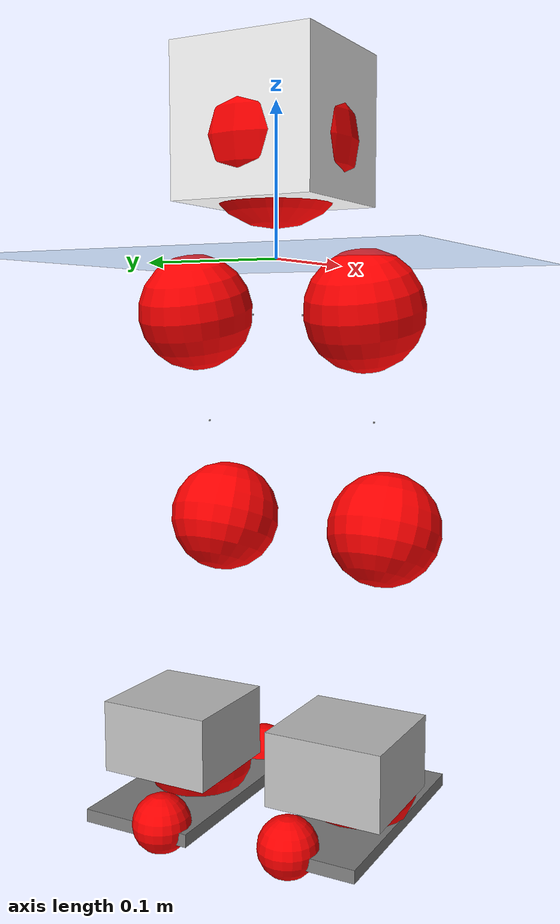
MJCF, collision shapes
<mujoco model="pi_12dof_release_v1">
  <compiler angle="radian" assetdir="assets" balanceinertia="true" inertiafromgeom="false"/>

  <option timestep="0.005" density="1.2" viscosity="2e-05"/>

  <size nkey="1"/>

  <visual>
    <quality shadowsize="8192"/>
    <map shadowclip="0.5"/>
  </visual>

  <default>
    <default class="/">
      <joint armature="0.01" damping="0.01" frictionloss="0.01"/>
      <geom contype="0" conaffinity="0" group="1" solref="-1000 -80"/>
      <site size="0.01 0.005 0.005" group="5"/>
      <general forcelimited="true" biastype="affine" gainprm="20" biasprm="0 -20 -0.5"/>
      <default class="foot">
        <geom size="0.0845 0.036 0.005" type="box" condim="6" group="4" priority="1" friction="0.9 0.2 0.2" solimp="0.015 1 0.005"/>
      </default>
      <default class="reward_collision_sphere">
        <geom group="5" rgba="1 0 0 1"/>
      </default>
    </default>
  </default>

  <asset>
    <texture type="skybox" colorspace="auto" name="//unnamed_texture_0" builtin="gradient" rgb1="0.95 0.95 0.95" rgb2="0.95 0.95 0.95" width="100" height="600"/>
    <texture type="2d" colorspace="auto" name="texplane" builtin="checker" rgb1="0.345 0.575 0.748" rgb2="0.345 0.575 0.748" markrgb="1 1 1" width="512" height="512"/>
    <material name="MatPlane" class="/" texture="texplane" texuniform="true" texrepeat="2 2" specular="0.9"/>
    <mesh name="baselink_1" class="/" file="baselink_1.STL"/>
    <mesh name="r_hip_pitch_link" class="/" file="r_hip_pitch_link.STL"/>
    <mesh name="r_hip_roll_link" class="/" file="r_hip_roll_link.STL"/>
    <mesh name="r_thigh_link" class="/" file="r_thigh_link.STL"/>
    <mesh name="r_calf_link" class="/" file="r_calf_link.STL"/>
    <mesh name="r_ankle_pitch_link" class="/" file="r_ankle_pitch_link.STL"/>
    <mesh name="r_ankle_roll_link" class="/" file="r_ankle_roll_link.STL"/>
    <mesh name="l_hip_pitch_link" class="/" file="l_hip_pitch_link.STL"/>
    <mesh name="l_hip_roll_link" class="/" file="l_hip_roll_link.STL"/>
    <mesh name="l_thigh_link" class="/" file="l_thigh_link.STL"/>
    <mesh name="l_calf_link" class="/" file="l_calf_link.STL"/>
    <mesh name="l_ankle_pitch_link" class="/" file="l_ankle_pitch_link.STL"/>
    <mesh name="l_ankle_roll_link" class="/" file="l_ankle_roll_link.STL"/>
  </asset>

  <worldbody>
    <geom name="floor" class="/" size="100 100 0.125" type="plane" group="0" material="MatPlane"/>
    <light name="toplight_shadow" class="/" pos="0 0 5" dir="0.0990148 0.0990148 -0.990148" type="directional" ambient="0.04 0.04 0.04" diffuse="0.55 0.55 0.55" specular="0.12 0.12 0.12"/>
    <light name="toplight_fill" class="/" pos="0 0 5" dir="0.0990148 0.0990148 -0.990148" type="directional" castshadow="false" ambient="0.04 0.04 0.04" diffuse="0.3 0.3 0.3" specular="0.08 0.08 0.08"/>
    <body name="trunk" pos="-0.000695934 -0.000209132 -0.00265202" quat="0.999999 -0.000319468 -0.000335097 -0.00128591">
      <inertial pos="0.000496912 0.00157219 0.0439099" quat="0.689482 0.00145358 0.00217986 0.724298" mass="1.99759" diaginertia="0.0112564 0.00359195 0.00620224"/>
      <joint name="//unnamed_joint_0" type="free"/>
      <geom name="//unnamed_geom_1" class="/" type="mesh" density="0" rgba="1 1 1 1" mesh="baselink_1"/>
      <geom name="//unnamed_geom_2" class="/" size="0.0486713 0.0486713 0.0486713" pos="0 0 0.0860043" type="box" rgba="1 1 1 1"/>
      <geom name="//unnamed_geom_3" class="reward_collision_sphere" size="0.0535384" pos="0 0 0.0752538"/>
      <site name="imu" class="/" pos="-0.00533449 0.00723045 -0.0122986" size="0.00973426"/>
      <camera name="track" class="/" pos="0 -1.64918 0" quat="0.707107 0.707107 0 0" mode="trackcom"/>
      <camera name="ego_camera" class="/" pos="0.0765474 0 0.19351" quat="-0.5 -0.5 0.5 0.5"/>
      <body name="r_hip_pitch_link" pos="0.00228105 -0.0184966 -0.0335164" quat="0.992198 2.10099e-06 -0.12467 8.35901e-06">
        <inertial pos="-0.00166336 -0.046773 -0.00261758" quat="-0.00906832 0.712149 -0.0255086 0.701506" mass="0.334576" diaginertia="0.000121547 3.71039e-05 0.000117463"/>
        <joint name="r_hip_pitch_joint" class="/" pos="0 0 0" axis="-0.000438505 -0.99999 -0.00454987" stiffness="0.00076314" range="-1.77294 1.26789" armature="0.00985412" damping="0.0136774" frictionloss="0.00925899"/>
        <geom name="//unnamed_geom_4" class="/" type="mesh" density="0" rgba="0.75294 0.75294 0.75294 1" mesh="r_hip_pitch_link"/>
        <geom name="//unnamed_geom_5" class="/" size="0.000486713 0.000486713 0.000486713" type="box" rgba="0.75294 0.75294 0.75294 1"/>
        <body name="r_hip_roll_link" pos="-0.00157327 -0.0443192 0.00266327" quat="1 -0.000101957 -3.74832e-05 0.000430893">
          <inertial pos="-0.00188129 0.000123616 -0.06409" quat="0.704671 -0.0802746 -0.0806303 0.700352" mass="0.341818" diaginertia="0.000352877 0.000102365 0.000172553"/>
          <joint name="r_hip_roll_joint" class="/" pos="0 0 0" axis="-0.999941 -0.00132257 -0.0107484" stiffness="0.00195372" range="-0.122763 0.506335" armature="0.00850264" damping="0.0094649" frictionloss="0.0105125"/>
          <geom name="//unnamed_geom_6" class="/" type="mesh" density="0" rgba="0.75294 0.75294 0.75294 1" mesh="r_hip_roll_link"/>
          <geom name="//unnamed_geom_7" class="/" size="0.000486713 0.000486713 0.000486713" type="box" rgba="0.75294 0.75294 0.75294 1"/>
          <geom name="//unnamed_geom_8" class="reward_collision_sphere" size="0.038937"/>
          <body name="r_thigh_link" pos="0.00147636 0.0013182 -0.074392" quat="1 0.000316029 -0.000208801 -0.000457293">
            <inertial pos="-0.00213001 -0.00193864 -0.0519455" quat="0.738288 0.674484 -1.19524e-06 -0.00147834" mass="0.103321" diaginertia="0.000132769 3.56916e-05 8.27791e-05"/>
            <joint name="r_thigh_joint" class="/" pos="0 0 0" axis="-0.00376867 -0.000902969 -0.999992" stiffness="0.000725736" range="-0.319258 0.645041" armature="0.00859858" damping="0.0155498" frictionloss="0.0102248"/>
            <geom name="//unnamed_geom_9" class="/" type="mesh" density="0" rgba="0.75294 0.75294 0.75294 1" mesh="r_thigh_link"/>
            <geom name="//unnamed_geom_10" class="/" size="0.000486713 0.000486713 0.000486713" type="box" rgba="0.75294 0.75294 0.75294 1"/>
            <body name="r_calf_link" pos="-0.00190748 -0.00116341 -0.0753687" quat="0.947867 0.000956593 0.318665 0.000580389">
              <inertial pos="-0.000770228 -0.000751308 -0.0755915" quat="0.999938 0.00998431 0.000153052 0.00488788" mass="0.781241" diaginertia="0.00387961 0.00133611 0.000250012"/>
              <joint name="r_calf_joint" class="/" pos="0 0 0" axis="0.0025745 -0.999992 0.00299723" stiffness="0.0012103" range="-1.64865 0.670069" armature="0.00971709" damping="0.0110664" frictionloss="0.00963827"/>
              <geom name="//unnamed_geom_11" class="/" type="mesh" density="0" rgba="0.75294 0.75294 0.75294 1" mesh="r_calf_link"/>
              <geom name="//unnamed_geom_12" class="/" size="0.000486713 0.000486713 0.000486713" type="box" rgba="0.75294 0.75294 0.75294 1"/>
              <geom name="//unnamed_geom_13" class="reward_collision_sphere" size="0.038937"/>
              <body name="r_ankle_pitch_link" pos="0.00158784 0.000244544 -0.151243" quat="0.980074 0.000257648 -0.19863 0.000261833">
                <inertial pos="0.00420619 0.00286678 0.000201056" quat="0.00292502 0.709926 -0.00209108 0.704267" mass="0.166806" diaginertia="0.000342195 8.16792e-05 0.000172495"/>
                <joint name="r_ankle_pitch_joint" class="/" pos="0 0 0" axis="-0.000744028 -0.999974 -0.00721701" range="-1.32188 0.504872" armature="0.00976654" damping="0.0225776" frictionloss="0.0092703"/>
                <geom name="//unnamed_geom_14" class="/" type="mesh" density="0" rgba="0.75294 0.75294 0.75294 1" mesh="r_ankle_pitch_link"/>
                <geom name="//unnamed_geom_15" class="/" size="0.0379636 0.038937 0.0243356" type="box" rgba="0.75294 0.75294 0.75294 1"/>
                <body name="r_ankle_roll_link" pos="0.0758283 0.00153596 0.000932259" quat="1 -0.000541561 0.000262201 8.63018e-05">
                  <inertial pos="-0.0233234 -0.00260007 -0.0132454" quat="0.554571 0.423188 0.440177 0.565338" mass="0.467606" diaginertia="0.00120728 0.000392568 0.000384228"/>
                  <joint name="r_ankle_roll_joint" class="/" pos="0 0 0" axis="-0.999997 0.000855557 -0.00218848" range="-0.200247 0.181694" armature="0.0084218" damping="0.000735471" frictionloss="0.00840603"/>
                  <geom name="//unnamed_geom_16" class="/" type="mesh" density="0" rgba="0.75294 0.75294 0.75294 1" mesh="r_ankle_roll_link"/>
                  <geom name="//unnamed_geom_17" class="/" type="mesh" rgba="0.75294 0.75294 0.75294 1" mesh="r_ankle_roll_link"/>
                  <geom name="right_foot" class="foot" size="0.0771486 0.0313789 0.00430976" pos="-0.0520523 0 -0.0473024"/>
                  <geom name="//unnamed_geom_19" class="reward_collision_sphere" size="0.038937" pos="-0.0510316 0 -0.0215011"/>
                  <geom name="//unnamed_geom_20" class="reward_collision_sphere" size="0.0194685" pos="0.0153095 0.0164918 -0.0430022"/>
                  <geom name="//unnamed_geom_21" class="reward_collision_sphere" size="0.0194685" pos="-0.122476 0.0164918 -0.0430022"/>
                  <site name="right_foot" class="foot" pos="-0.0520523 0 -0.0473024" size="0.00973426"/>
                </body>
              </body>
            </body>
          </body>
        </body>
      </body>
      <body name="l_hip_pitch_link" pos="-0.000241658 0.0172926 -0.0332616" quat="0.992196 -0.000173399 -0.124691 0.000209301">
        <inertial pos="0.000765601 0.0416039 -0.00248754" quat="-0.0385793 0.705581 0.0295234 0.706962" mass="0.35523" diaginertia="0.000138332 3.93988e-05 0.000137769"/>
        <joint name="l_hip_pitch_joint" class="/" pos="0 0 0" axis="-0.00837706 0.999895 -0.0118273" range="-1.30028 1.73371" armature="0.00971722" damping="0" frictionloss="0.0102564"/>
        <geom name="//unnamed_geom_22" class="/" type="mesh" density="0" rgba="0.75294 0.75294 0.75294 1" mesh="l_hip_pitch_link"/>
        <geom name="//unnamed_geom_23" class="/" size="0.000486713 0.000486713 0.000486713" type="box" rgba="0.75294 0.75294 0.75294 1"/>
        <body name="l_hip_roll_link" pos="-0.00103747 0.043376 0.00221481" quat="0.999999 -0.000859786 0.000678935 0.000119912">
          <inertial pos="0.000887202 -0.00239661 -0.0682016" quat="0.699082 -0.0753782 -0.0784083 0.706721" mass="0.367322" diaginertia="0.000393151 0.000107849 0.000194996"/>
          <joint name="l_hip_roll_joint" class="/" pos="0 0 0" axis="-0.999992 0.00026509 -0.00403334" range="-0.499841 0.0864182" armature="0.00873247" damping="0.0140043" frictionloss="0.00977761"/>
          <geom name="//unnamed_geom_24" class="/" type="mesh" density="0" rgba="0.75294 0.75294 0.75294 1" mesh="l_hip_roll_link"/>
          <geom name="//unnamed_geom_25" class="/" size="0.000486713 0.000486713 0.000486713" type="box" rgba="0.75294 0.75294 0.75294 1"/>
          <geom name="//unnamed_geom_26" class="reward_collision_sphere" size="0.038937"/>
          <body name="l_thigh_link" pos="-0.00224466 0.000155455 -0.0765757" quat="0.999999 -0.000810637 -0.000781362 -0.000440011">
            <inertial pos="-0.00218504 8.2575e-05 -0.0538312" quat="0.669657 0.742584 0.00136915 -0.0112181" mass="0.101611" diaginertia="0.000134544 3.46821e-05 8.12042e-05"/>
            <joint name="l_thigh_joint" class="/" pos="0 0 0" axis="0.00180635 0.000953595 -0.999998" range="-0.611947 0.320761" armature="0.0100911" damping="0.00470132" frictionloss="0.0109969"/>
            <geom name="//unnamed_geom_27" class="/" type="mesh" density="0" rgba="0.75294 0.75294 0.75294 1" mesh="l_thigh_link"/>
            <geom name="//unnamed_geom_28" class="/" size="0.000486713 0.000486713 0.000486713" type="box" rgba="0.75294 0.75294 0.75294 1"/>
            <body name="l_calf_link" pos="0.00152175 -9.47224e-05 -0.0733147" quat="0.94767 0.000175087 0.319252 -0.000144192">
              <inertial pos="-0.00215115 0.000726737 -0.076254" quat="0.999864 0.00586888 -0.0130648 0.00820097" mass="0.75201" diaginertia="0.00416591 0.00138733 0.000262477"/>
              <joint name="l_calf_joint" class="/" pos="0 0 0" axis="-0.00290045 0.999967 0.00753213" range="-0.703817 1.70735" armature="0.00931854" damping="0" frictionloss="0.0106267"/>
              <geom name="//unnamed_geom_29" class="/" type="mesh" density="0" rgba="0.75294 0.75294 0.75294 1" mesh="l_calf_link"/>
              <geom name="//unnamed_geom_30" class="/" size="0.000486713 0.000486713 0.000486713" type="box" rgba="0.75294 0.75294 0.75294 1"/>
              <geom name="//unnamed_geom_31" class="reward_collision_sphere" size="0.038937"/>
              <body name="l_ankle_pitch_link" pos="0.00206211 0.000478704 -0.151047" quat="0.980153 0.000231805 -0.198243 9.42616e-05">
                <inertial pos="0.0056999 -0.00232539 -0.00281427" quat="-0.00942648 0.711486 0.00130676 0.702636" mass="0.158313" diaginertia="0.000354903 8.50589e-05 0.000171164"/>
                <joint name="l_ankle_pitch_joint" class="/" pos="0 0 0" axis="-0.00194661 0.999995 0.00243153" stiffness="0.00946803" range="-0.546081 1.30283" armature="0.00952743" damping="0" frictionloss="0.00852043"/>
                <geom name="//unnamed_geom_32" class="/" type="mesh" density="0" rgba="0.75294 0.75294 0.75294 1" mesh="l_ankle_pitch_link"/>
                <geom name="//unnamed_geom_33" class="/" size="0.0379636 0.038937 0.0243356" type="box" rgba="0.75294 0.75294 0.75294 1"/>
                <body name="l_ankle_roll_link" pos="0.0744529 0.00295411 -0.00269687" quat="0.999999 -0.00108008 -0.000124662 -0.000575532">
                  <inertial pos="-0.0251267 -0.0005859 -0.0162762" quat="0.56874 0.421589 0.43704 0.554791" mass="0.494486" diaginertia="0.00129393 0.000406352 0.000400716"/>
                  <joint name="l_ankle_roll_joint" class="/" pos="0 0 0" axis="-1 -6.15406e-05 -9.68599e-05" stiffness="0.00375775" range="-0.167078 0.103137" armature="0.00969492" damping="0" frictionloss="0.00934771"/>
                  <geom name="//unnamed_geom_34" class="/" type="mesh" density="0" rgba="0.75294 0.75294 0.75294 1" mesh="l_ankle_roll_link"/>
                  <geom name="//unnamed_geom_35" class="/" type="mesh" rgba="0.75294 0.75294 0.75294 1" mesh="l_ankle_roll_link"/>
                  <geom name="left_foot" class="foot" size="0.0774949 0.0393449 0.00438146" pos="-0.0520523 0 -0.0473024"/>
                  <geom name="//unnamed_geom_37" class="reward_collision_sphere" size="0.038937" pos="-0.0510316 0 -0.0215011"/>
                  <geom name="//unnamed_geom_38" class="reward_collision_sphere" size="0.0194685" pos="0.0153095 -0.0164918 -0.0430022"/>
                  <geom name="//unnamed_geom_39" class="reward_collision_sphere" size="0.0194685" pos="-0.122476 -0.0164918 -0.0430022"/>
                  <site name="left_foot" class="foot" pos="-0.0520523 0 -0.0473024" size="0.00973426"/>
                </body>
              </body>
            </body>
          </body>
        </body>
      </body>
    </body>
  </worldbody>

  <contact>
    <pair class="/" geom1="floor" geom2="right_foot" name="//unnamed_contact_1"/>
    <pair class="/" geom1="floor" geom2="left_foot" name="//unnamed_contact_0"/>
  </contact>

  <actuator>
    <general name="r_hip_pitch_joint" class="/" joint="r_hip_pitch_joint" forcerange="-22.5404 22.5404" gainprm="18.3321" biasprm="0 -18.3321 -0.455558"/>
    <general name="r_hip_roll_joint" class="/" joint="r_hip_roll_joint" forcerange="-18.5037 18.5037" gainprm="18.3321" biasprm="0 -18.3321 -0.455558"/>
    <general name="r_thigh_joint" class="/" joint="r_thigh_joint" forcerange="-20.6263 20.6263" gainprm="18.3321" biasprm="0 -18.3321 -0.455558"/>
    <general name="r_calf_joint" class="/" joint="r_calf_joint" forcerange="-22.3047 22.3047" gainprm="18.3321" biasprm="0 -18.3321 -0.455558"/>
    <general name="r_ankle_pitch_joint" class="/" joint="r_ankle_pitch_joint" forcerange="-20.1004 20.1004" gainprm="18.3321" biasprm="0 -18.3321 -0.455558"/>
    <general name="r_ankle_roll_joint" class="/" joint="r_ankle_roll_joint" forcerange="-18.4517 18.4517" gainprm="18.3321" biasprm="0 -18.3321 -0.455558"/>
    <general name="l_hip_pitch_joint" class="/" joint="l_hip_pitch_joint" forcerange="-20.3854 20.3854" gainprm="18.3321" biasprm="0 -18.3321 -0.455558"/>
    <general name="l_hip_roll_joint" class="/" joint="l_hip_roll_joint" forcerange="-19.6621 19.6621" gainprm="18.3321" biasprm="0 -18.3321 -0.455558"/>
    <general name="l_thigh_joint" class="/" joint="l_thigh_joint" forcerange="-21.4577 21.4577" gainprm="18.3321" biasprm="0 -18.3321 -0.455558"/>
    <general name="l_calf_joint" class="/" joint="l_calf_joint" forcerange="-21.1667 21.1667" gainprm="18.3321" biasprm="0 -18.3321 -0.455558"/>
    <general name="l_ankle_pitch_joint" class="/" joint="l_ankle_pitch_joint" forcerange="-21.2939 21.2939" gainprm="18.3321" biasprm="0 -18.3321 -0.455558"/>
    <general name="l_ankle_roll_joint" class="/" joint="l_ankle_roll_joint" forcerange="-20.3115 20.3115" gainprm="18.3321" biasprm="0 -18.3321 -0.455558"/>
  </actuator>

  <sensor>
    <gyro site="imu" name="imu_angular_velocity"/>
    <velocimeter site="imu" name="imu_linear_velocity"/>
    <framelinvel objtype="site" objname="left_foot" name="left_foot_global_linear_velocity"/>
    <framelinvel objtype="site" objname="right_foot" name="right_foot_global_linear_velocity"/>
  </sensor>

  <keyframe>
    <key name="home" qpos="0 0 0.291 1 0 0 0 0.4 0 0 -0.8 0.4 0 -0.4 0 0 0.8 -0.4 0"/>
  </keyframe>
</mujoco>
